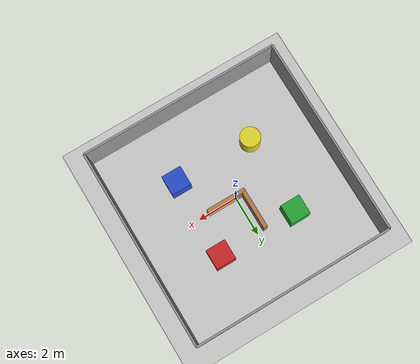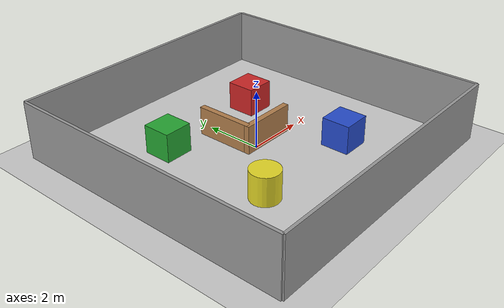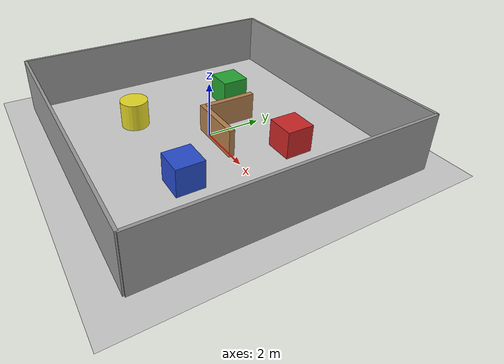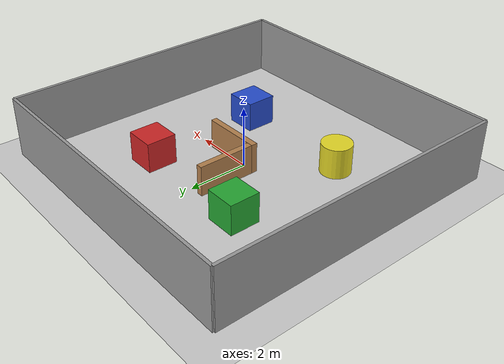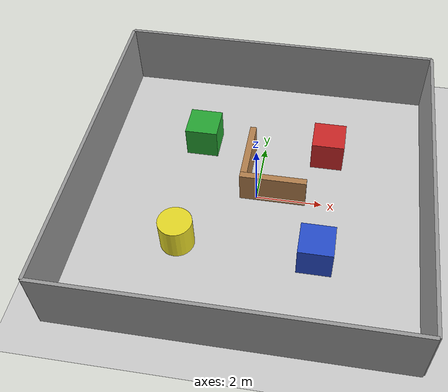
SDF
<?xml version="1.0" ?>
<sdf version="1.6">
  <world name="nav2_test">
    <!-- Physics -->
    <physics type="ode">
      <max_step_size>0.001</max_step_size>
      <real_time_factor>1</real_time_factor>
      <real_time_update_rate>1000</real_time_update_rate>
    </physics>

    <!-- Lighting -->
    <include>
      <uri>model://sun</uri>
    </include>

    <!-- Ground Plane -->
    <include>
      <uri>model://ground_plane</uri>
    </include>

    <!-- Enclosed Room Walls (10m x 10m) -->
    <model name="wall_north">
      <static>true</static>
      <pose>0 5 1 0 0 0</pose>
      <link name="link">
        <collision name="collision">
          <geometry>
            <box>
              <size>10 0.1 2</size>
            </box>
          </geometry>
        </collision>
        <visual name="visual">
          <geometry>
            <box>
              <size>10 0.1 2</size>
            </box>
          </geometry>
          <material>
            <script>
              <uri>file://media/materials/scripts/gazebo.material</uri>
              <name>Gazebo/Grey</name>
            </script>
          </material>
        </visual>
      </link>
    </model>

    <model name="wall_south">
      <static>true</static>
      <pose>0 -5 1 0 0 0</pose>
      <link name="link">
        <collision name="collision">
          <geometry>
            <box>
              <size>10 0.1 2</size>
            </box>
          </geometry>
        </collision>
        <visual name="visual">
          <geometry>
            <box>
              <size>10 0.1 2</size>
            </box>
          </geometry>
          <material>
            <script>
              <uri>file://media/materials/scripts/gazebo.material</uri>
              <name>Gazebo/Grey</name>
            </script>
          </material>
        </visual>
      </link>
    </model>

    <model name="wall_east">
      <static>true</static>
      <pose>5 0 1 0 0 0</pose>
      <link name="link">
        <collision name="collision">
          <geometry>
            <box>
              <size>0.1 10 2</size>
            </box>
          </geometry>
        </collision>
        <visual name="visual">
          <geometry>
            <box>
              <size>0.1 10 2</size>
            </box>
          </geometry>
          <material>
            <script>
              <uri>file://media/materials/scripts/gazebo.material</uri>
              <name>Gazebo/Grey</name>
            </script>
          </material>
        </visual>
      </link>
    </model>

    <model name="wall_west">
      <static>true</static>
      <pose>-5 0 1 0 0 0</pose>
      <link name="link">
        <collision name="collision">
          <geometry>
            <box>
              <size>0.1 10 2</size>
            </box>
          </geometry>
        </collision>
        <visual name="visual">
          <geometry>
            <box>
              <size>0.1 10 2</size>
            </box>
          </geometry>
          <material>
            <script>
              <uri>file://media/materials/scripts/gazebo.material</uri>
              <name>Gazebo/Grey</name>
            </script>
          </material>
        </visual>
      </link>
    </model>

    <!-- Obstacles -->
    <!-- Box Red -->
    <model name="box_red">
      <static>true</static>
      <pose>2 2 0.5 0 0 0</pose>
      <link name="link">
        <collision name="collision">
          <geometry>
            <box>
              <size>1 1 1</size>
            </box>
          </geometry>
        </collision>
        <visual name="visual">
          <geometry>
            <box>
              <size>1 1 1</size>
            </box>
          </geometry>
          <material>
            <script>
              <uri>file://media/materials/scripts/gazebo.material</uri>
              <name>Gazebo/Red</name>
            </script>
          </material>
        </visual>
      </link>
    </model>

    <!-- Box Green -->
    <model name="box_green">
      <static>true</static>
      <pose>-2 2 0.5 0 0 0</pose>
      <link name="link">
        <collision name="collision">
          <geometry>
            <box>
              <size>1 1 1</size>
            </box>
          </geometry>
        </collision>
        <visual name="visual">
          <geometry>
            <box>
              <size>1 1 1</size>
            </box>
          </geometry>
          <material>
            <script>
              <uri>file://media/materials/scripts/gazebo.material</uri>
              <name>Gazebo/Green</name>
            </script>
          </material>
        </visual>
      </link>
    </model>

    <!-- Box Blue -->
    <model name="box_blue">
      <static>true</static>
      <pose>2 -2 0.5 0 0 0</pose>
      <link name="link">
        <collision name="collision">
          <geometry>
            <box>
              <size>1 1 1</size>
            </box>
          </geometry>
        </collision>
        <visual name="visual">
          <geometry>
            <box>
              <size>1 1 1</size>
            </box>
          </geometry>
          <material>
            <script>
              <uri>file://media/materials/scripts/gazebo.material</uri>
              <name>Gazebo/Blue</name>
            </script>
          </material>
        </visual>
      </link>
    </model>

    <!-- Cylinder Yellow -->
    <model name="cylinder_yellow">
      <static>true</static>
      <pose>-2 -2 0.5 0 0 0</pose>
      <link name="link">
        <collision name="collision">
          <geometry>
            <cylinder>
              <radius>0.5</radius>
              <length>1</length>
            </cylinder>
          </geometry>
        </collision>
        <visual name="visual">
          <geometry>
            <cylinder>
              <radius>0.5</radius>
              <length>1</length>
            </cylinder>
          </geometry>
          <material>
            <script>
              <uri>file://media/materials/scripts/gazebo.material</uri>
              <name>Gazebo/Yellow</name>
            </script>
          </material>
        </visual>
      </link>
    </model>

    <!-- L-Shaped Wall -->
    <model name="l_wall">
      <static>true</static>
      <pose>0 0 0.5 0 0 0</pose>
      <link name="link1">
        <pose>0.5 0 0 0 0 0</pose>
        <collision name="collision">
          <geometry>
            <box>
              <size>2 0.2 1</size>
            </box>
          </geometry>
        </collision>
        <visual name="visual">
          <geometry>
            <box>
              <size>2 0.2 1</size>
            </box>
          </geometry>
          <material>
             <script>
              <uri>file://media/materials/scripts/gazebo.material</uri>
              <name>Gazebo/Wood</name>
            </script>
          </material>
        </visual>
      </link>
      <link name="link2">
        <pose>-0.4 1 0 0 0 1.5708</pose>
        <collision name="collision">
          <geometry>
            <box>
              <size>2 0.2 1</size>
            </box>
          </geometry>
        </collision>
        <visual name="visual">
          <geometry>
            <box>
              <size>2 0.2 1</size>
            </box>
          </geometry>
          <material>
             <script>
              <uri>file://media/materials/scripts/gazebo.material</uri>
              <name>Gazebo/Wood</name>
            </script>
          </material>
        </visual>
      </link>
    </model>

  </world>
</sdf>
